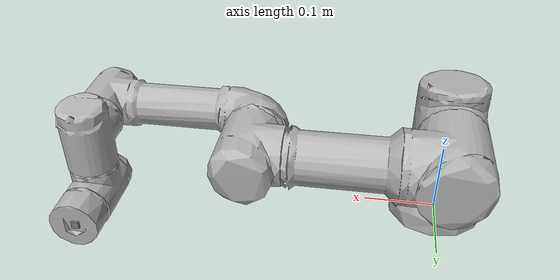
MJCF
<mujoco model="ur3">
  <compiler angle="radian" meshdir="ur_description/meshes/ur3/collision/"/>
  <actuator>
    <motor gear="10000" joint="shoulder_pan_joint" name="shoulder_pan_joint" ctrlrange="-500 500" ctrllimited="true"/>
    <motor gear="10000" joint="shoulder_lift_joint" name="shoulder_lift_joint" ctrlrange="-500 500" ctrllimited="true"/>
    <motor gear="10000" joint="elbow_joint" name="elbow_joint" ctrlrange="-500 500" ctrllimited="true"/>
    <motor gear="10000" joint="wrist_1_joint" name="wrist_1_joint" ctrlrange="-500 500" ctrllimited="true"/>
    <motor gear="10000" joint="wrist_2_joint" name="wrist_2_joint" ctrlrange="-500 500" ctrllimited="true"/>
    <motor gear="10000" joint="wrist_3_joint" name="wrist_3_joint" ctrlrange="-500 500" ctrllimited="true"/>
  </actuator>
  <sensor>
    <jointpos joint="shoulder_pan_joint"/>
    <jointpos joint="shoulder_lift_joint"/>
    <jointpos joint="elbow_joint"/>
    <jointpos joint="wrist_1_joint"/>
    <jointpos joint="wrist_2_joint"/>
    <jointpos joint="wrist_3_joint"/>
  </sensor>
  <asset>
    <mesh name="base" file="base.stl"/>
    <mesh name="shoulder" file="shoulder.stl"/>
    <mesh name="upperarm" file="upperarm.stl"/>
    <mesh name="forearm" file="forearm.stl"/>
    <mesh name="wrist1" file="wrist1.stl"/>
    <mesh name="wrist2" file="wrist2.stl"/>
    <mesh name="wrist3" file="wrist3.stl"/>
  </asset>

  <worldbody>
    <body name="base_link">
      <inertial pos="0 0 0" quat="0.5 0.5 -0.5 0.5" mass="2" diaginertia="0.005625 0.00305317 0.00305317"/>
      <geom type="mesh" contype="0" conaffinity="0" group="1" density="0" rgba="0.7 0.7 0.7 1" mesh="base"/>
      <geom type="mesh" rgba="0.7 0.7 0.7 1" mesh="base"/>
      <body name="shoulder_link" pos="0 0 0.1519">
        <inertial pos="0 0 0" mass="2" diaginertia="0.00809316 0.00809316 0.005625"/>
        <joint armature="0.0118674" name="shoulder_pan_joint" pos="0 0 0" axis="0 0 1" range="-6.28319 6.28319" actuatorfrcrange="-330 330"/>
        <geom type="mesh" contype="0" conaffinity="0" group="1" density="0" rgba="0.7 0.7 0.7 1" mesh="shoulder"/>
        <geom type="mesh" rgba="0.7 0.7 0.7 1" mesh="shoulder"/>
        <body name="upper_arm_link" pos="0 0.1198 0" quat="0.707107 0 0.707107 0">
          <inertial pos="0 0 0.121825" mass="3.42" diaginertia="0.0217285 0.0217285 0.00961875"/>
          <joint armature="0.027970883221099998" name="shoulder_lift_joint" pos="0 0 0" axis="0 1 0" range="-6.28319 6.28319" actuatorfrcrange="-330 330"/>
          <geom type="mesh" contype="0" conaffinity="0" group="1" density="0" rgba="0.7 0.7 0.7 1" mesh="upperarm"/>
          <geom type="mesh" rgba="0.7 0.7 0.7 1" mesh="upperarm"/>
          <body name="forearm_link" pos="0 -0.0925 0.24365">
            <inertial pos="0 0 0.106625" mass="1.26" diaginertia="0.00654681 0.00654681 0.00354375"/>
            <joint armature="0.01278920644378" name="elbow_joint" pos="0 0 0" axis="0 1 0" range="-3.14159 3.14159" actuatorfrcrange="-150 150"/>
            <geom type="mesh" contype="0" conaffinity="0" group="1" density="0" rgba="0.7 0.7 0.7 1" mesh="forearm"/>
            <geom type="mesh" rgba="0.7 0.7 0.7 1" mesh="forearm"/>
            <body name="wrist_1_link" pos="0 0 0.21325" quat="0.707107 0 0.707107 0">
              <inertial pos="0 0 0" quat="0.5 0.5 -0.5 0.5" mass="0.8" diaginertia="0.00225 0.002085 0.002085"/>
              <joint armature="0.008327399166" name="wrist_1_joint" pos="0 0 0" axis="0 1 0" range="-6.28319 6.28319" actuatorfrcrange="-54 54"/>
              <geom type="mesh" contype="0" conaffinity="0" group="1" density="0" rgba="0.7 0.7 0.7 1" mesh="wrist1"/>
              <geom type="mesh" rgba="0.7 0.7 0.7 1" mesh="wrist1"/>
              <body name="wrist_2_link" pos="0 0.08505 0">
                <inertial pos="0 0 0" quat="0.5 0.5 -0.5 0.5" mass="0.8" diaginertia="0.00225 0.002085 0.002085"/>
                <joint armature="0.008492399999999999" name="wrist_2_joint" pos="0 0 0" axis="0 0 1" range="-6.28319 6.28319" actuatorfrcrange="-54 54"/>
                <geom type="mesh" contype="0" conaffinity="0" group="1" density="0" rgba="0.7 0.7 0.7 1" mesh="wrist2"/>
                <geom type="mesh" rgba="0.7 0.7 0.7 1" mesh="wrist2"/>
                <body name="wrist_3_link" pos="0 0 0.08535">
                  <inertial pos="0 0 0" quat="0.5 0.5 -0.5 0.5" mass="0.35" diaginertia="0.000984375 0.000912187 0.000912187"/>
                  <joint armature="0.007154587135124999" name="wrist_3_joint" pos="0 0 0" axis="0 1 0" range="-6.28319 6.28319" actuatorfrcrange="-54 54"/>
                  <geom type="mesh" contype="0" conaffinity="0" group="1" density="0" rgba="0.7 0.7 0.7 1" mesh="wrist3"/>
                  <geom type="mesh" rgba="0.7 0.7 0.7 1" mesh="wrist3"/>
                  <body name="ee_link" pos="0 0.0819 0" quat="0.707107 0 0 0.707107">
                    <geom size="0.005 0.005 0.005" pos="-0.01 0 0" type="box"/>
                  </body>
                  <body name="tool0" pos="0 0.0819 0" quat="0.707107 -0.707107 0 0"/>
                </body>
              </body>
            </body>
          </body>
        </body>
      </body>
      <body name="base" quat="0 0 0 -1"/>
    </body>
  </worldbody>
</mujoco>
